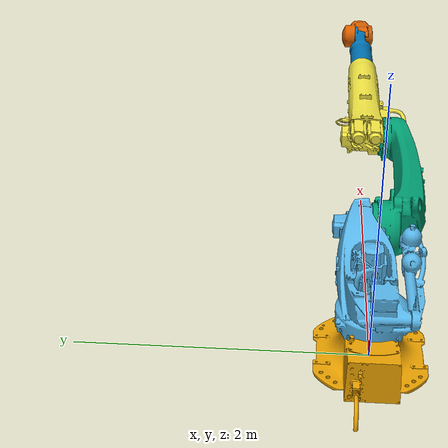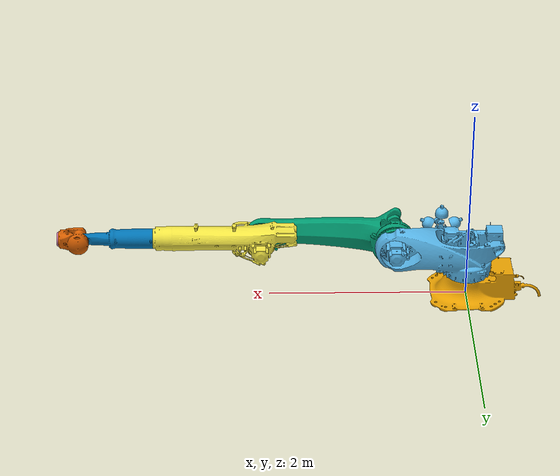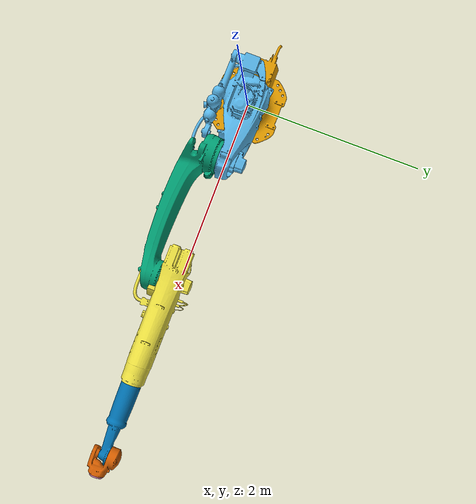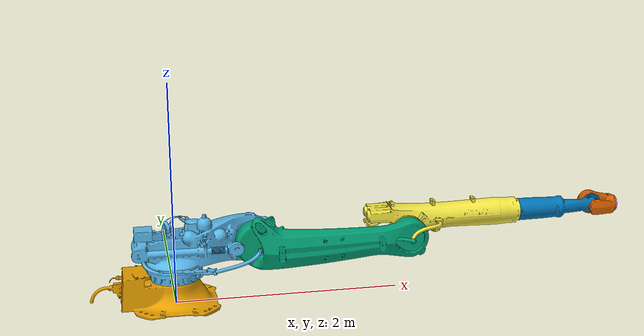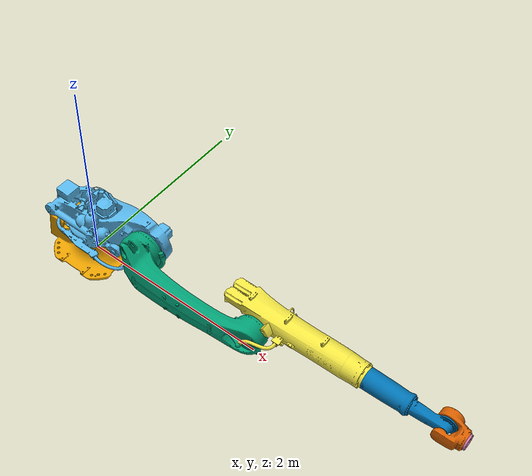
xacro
<?xml version="1.0"?>
<!--Generates a urdf from the macro in kr120_r3900-2_k_macro.xacro -->
<robot name="kuka_kr120_r3900-2_k" xmlns:xacro="http://wiki.ros.org/xacro">
    <xacro:include filename="$(find kuka_kr120_support)/urdf/kr120_r3900-2_k_macro.xacro" />
    <xacro:kuka_kr120_r3900-2_k prefix=""/>
</robot>

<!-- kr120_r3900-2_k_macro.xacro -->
<robot xmlns:xacro="http://wiki.ros.org/xacro">

  <xacro:include filename="$(find kuka_resources)/urdf/common_materials.xacro"/>
  <xacro:macro name="kuka_kr120_r3900-2_k" params="prefix">
    <!-- LINKS -->
    <!-- base link -->
    <link name="${prefix}base_link">
      <inertial>
        <origin xyz="0 0 0" rpy="0 0 0"/>
        <mass value="2"/>
        <inertia ixx="0.01" ixy="0" ixz="0" iyy="0.01" iyz="0" izz="0.01" />
      </inertial>
      <visual>
        <origin xyz="0 0 0" rpy="0 0 0"/>
        <geometry>
          <mesh filename="package://kuka_kr120_support/meshes/kr120_r3900-2_k/visual/base_link.stl" />
        </geometry>
        <xacro:material_kuka_pedestal />
      </visual>
      <collision>
        <origin xyz="0 0 0" rpy="0 0 0"/>
        <geometry>
          <mesh filename="package://kuka_kr120_support/meshes/kr120_r3900-2_k/collision/base_link.stl" />
        </geometry>
      </collision>
    </link>
    <!-- link 1 (A1) -->
    <link name="${prefix}link_1">
      <inertial>
        <origin xyz="0 0 0" rpy="0 0 0"/>
        <mass value="2"/>
        <inertia ixx="0.01" ixy="0" ixz="0" iyy="0.01" iyz="0" izz="0.01" />
      </inertial>
      <visual>
        <origin xyz="0 0 0" rpy="0 0 0"/>
        <geometry>
          <mesh filename="package://kuka_kr120_support/meshes/kr120_r3900-2_k/visual/link_1.stl" />
        </geometry>
        <xacro:material_kuka_orange />
      </visual>
      <collision>
        <origin xyz="0 0 0" rpy="0 0 0"/>
        <geometry>
          <mesh filename="package://kuka_kr120_support/meshes/kr120_r3900-2_k/collision/link_1.stl" />
        </geometry>
      </collision>
    </link>
    <!-- link 2 -->
    <link name="${prefix}link_2">
      <inertial>
        <origin xyz="0 0 0" rpy="0 0 0"/>
        <mass value="2"/>
        <inertia ixx="0.01" ixy="0" ixz="0" iyy="0.01" iyz="0" izz="0.01" />
      </inertial>
      <visual>
        <origin xyz="0 0 0" rpy="0 0 0"/>
        <geometry>
          <mesh filename="package://kuka_kr120_support/meshes/kr120_r3900-2_k/visual/link_2.stl"/>
        </geometry>
        <xacro:material_kuka_orange />
      </visual>
      <collision>
        <origin xyz="0 0 0" rpy="0 0 0"/>
        <geometry>
          <mesh filename="package://kuka_kr120_support/meshes/kr120_r3900-2_k/collision/link_2.stl" />
        </geometry>
      </collision>
    </link>
    <!-- link 3 -->
    <link name="${prefix}link_3">
      <inertial>
        <origin xyz="0 0 0" rpy="0 0 0"/>
        <mass value="2"/>
        <inertia ixx="0.01" ixy="0" ixz="0" iyy="0.01" iyz="0" izz="0.01" />
      </inertial>
      <visual>
        <origin xyz="0 0 0" rpy="0 0 0"/>
        <geometry>
          <mesh filename="package://kuka_kr120_support/meshes/kr120_r3900-2_k/visual/link_3.stl" />
        </geometry>
        <xacro:material_kuka_orange />
      </visual>
      <collision>
        <origin xyz="0 0 0" rpy="0 0 0"/>
        <geometry>
          <mesh filename="package://kuka_kr120_support/meshes/kr120_r3900-2_k/collision/link_3.stl" />
        </geometry>
      </collision>
    </link>
    <!-- link 4 -->
    <link name="${prefix}link_4">
      <inertial>
        <origin xyz="0 0 0" rpy="0 0 0"/>
        <mass value="2"/>
        <inertia ixx="0.01" ixy="0" ixz="0" iyy="0.01" iyz="0" izz="0.01" />
      </inertial>
      <visual>
        <origin xyz="0 0 0" rpy="0 0 0"/>
        <geometry>
          <mesh filename="package://kuka_kr120_support/meshes/kr120_r3900-2_k/visual/link_4.stl" />
        </geometry>
        <xacro:material_kuka_orange />
      </visual>
      <collision>
        <origin xyz="0 0 0" rpy="0 0 0"/>
        <geometry>
          <mesh filename="package://kuka_kr120_support/meshes/kr120_r3900-2_k/collision/link_4.stl" />
        </geometry>
      </collision>
    </link>
    <!-- link 5 -->
    <link name="${prefix}link_5">
      <inertial>
        <origin xyz="0 0 0" rpy="0 0 0"/>
        <mass value="2"/>
        <inertia ixx="0.01" ixy="0" ixz="0" iyy="0.01" iyz="0" izz="0.01" />
      </inertial>
      <visual>
        <origin xyz="0 0 0" rpy="0 0 0"/>
        <geometry>
          <mesh filename="package://kuka_kr120_support/meshes/kr120_r3900-2_k/visual/link_5.stl" />
        </geometry>
        <xacro:material_kuka_orange />
      </visual>
      <collision>
        <origin xyz="0 0 0" rpy="0 0 0"/>
        <geometry>
          <mesh filename="package://kuka_kr120_support/meshes/kr120_r3900-2_k/collision/link_5.stl" />
        </geometry>
      </collision>
    </link>
    <!-- link 6 -->
    <link name="${prefix}link_6">
      <inertial>
        <origin xyz="0 0 0" rpy="0 0 0"/>
        <mass value="2"/>
        <inertia ixx="0.01" ixy="0" ixz="0" iyy="0.01" iyz="0" izz="0.01" />
      </inertial>
      <visual>
        <origin xyz="0 0 0" rpy="0 0 0"/>
        <geometry>
          <mesh filename="package://kuka_kr120_support/meshes/kr120_r3900-2_k/visual/link_6.stl" />
        </geometry>
        <xacro:material_kuka_black />
      </visual>
      <collision>
        <origin xyz="0 0 0" rpy="0 0 0"/>
        <geometry>
          <mesh filename="package://kuka_kr120_support/meshes/kr120_r3900-2_k/collision/link_6.stl" />
        </geometry>
      </collision>
    </link>
    <!-- Following REP199, this frame shall be use to attach EEF or other equipment -->
    <link name="${prefix}flange" />
    <!-- END LINKS -->

    <!-- JOINTS -->
    <!-- joint 1 (A1) -->
    <joint name="${prefix}joint_a1" type="revolute">
      <origin xyz="0 0 0.550" rpy="0 0 0"/>
      <parent link="${prefix}base_link"/>
      <child link="${prefix}link_1"/>
      <axis xyz="0 0 -1"/>
      <limit effort="0" lower="${-radians(185)}" upper="${radians(185)}" velocity="${radians(105)}"/>
    </joint>
    <!-- joint 2 (A2) -->
    <joint name="${prefix}joint_a2" type="revolute">
      <origin xyz="0.730 0 0" rpy="0 ${radians(90)} 0"/>
      <parent link="${prefix}link_1"/>
      <child link="${prefix}link_2"/>
      <axis xyz="0 1 0"/>
      <limit effort="0" lower="${-radians(120)}" upper="${radians(70)}" velocity="${radians(101)}"/>
    </joint>
    <!-- joint 3 (A3) -->
    <joint name="${prefix}joint_a3" type="revolute">
      <origin xyz="0 0 1.350" rpy="0 0 0"/>
      <parent link="${prefix}link_2"/>
      <child link="${prefix}link_3"/>
      <axis xyz="0 1 0"/>
      <limit effort="0" lower="${-radians(120)}" upper="${radians(168)}" velocity="${radians(110)}"/>
    </joint>
    <!-- joint 4 (A4) -->
    <joint name="${prefix}joint_a4" type="revolute">
      <origin xyz="-0.115 0 1.820" rpy="0 0 0"/>
      <parent link="${prefix}link_3"/>
      <child link="${prefix}link_4"/>
      <axis xyz="0 0 -1"/>
      <limit effort="0" lower="${-radians(350)}" upper="${radians(350)}" velocity="${radians(190)}"/>
    </joint>
    <!-- joint 5 (A5) -->
    <joint name="${prefix}joint_a5" type="revolute">
      <origin xyz="0 0 0" rpy="0 0 0"/>
      <parent link="${prefix}link_4"/>
      <child link="${prefix}link_5"/>
      <axis xyz="0 1 0"/>
      <limit effort="0" lower="${-radians(125)}" upper="${radians(125)}" velocity="${radians(180)}"/>
    </joint>
    <!-- joint 6 (A6) -->
    <joint name="${prefix}joint_a6" type="revolute">
      <origin xyz="0 0 0.215" rpy="0 0 0"/>
      <parent link="${prefix}link_5"/>
      <child link="${prefix}link_6"/>
      <axis xyz="0 0 -1"/>
      <limit effort="0" lower="${-radians(350)}" upper="${radians(350)}" velocity="${radians(260)}"/>
    </joint>
    <!-- tool frame - fixed frame -->
    <joint name="${prefix}joint_a6-flange" type="fixed">
      <parent link="${prefix}link_6"/>
      <child link="${prefix}flange"/>
      <origin xyz="0 0 0" rpy="0 0 0"/>
    </joint>
    <!-- END JOINTS -->

    <!-- ROS base_link to KUKA $ROBROOT coordinate system transform -->
    <link name="${prefix}base" />
    <joint name="${prefix}base_link-base" type="fixed">
      <origin xyz="0 0 0" rpy="0 0 0"/>
      <parent link="${prefix}base_link"/>
      <child link="${prefix}base"/>
    </joint>

    <!-- This frame corresponds to the $TOOL coordinate system in KUKA KRC controllers -->
    <link name="${prefix}tool0" />
    <joint name="${prefix}flange-tool0" type="fixed">
      <parent link="${prefix}flange"/>
      <child link="${prefix}tool0"/>
      <origin xyz="0 0 0" rpy="0 0 0"/>
    </joint>
  </xacro:macro>
</robot>
